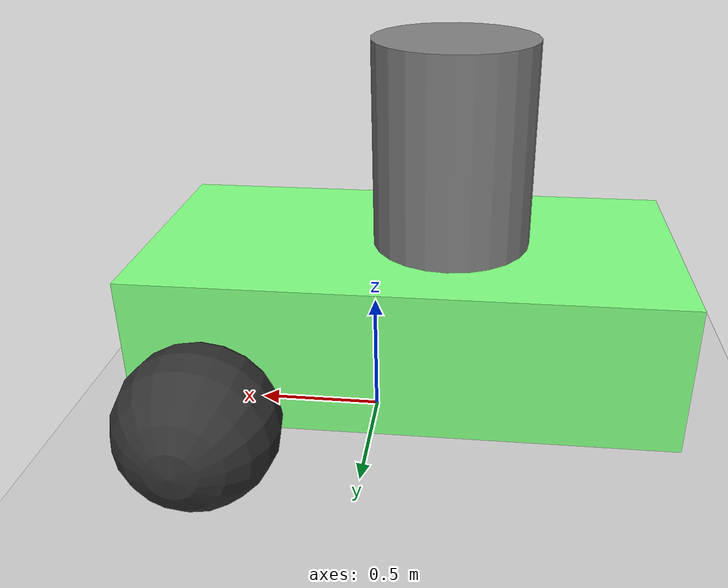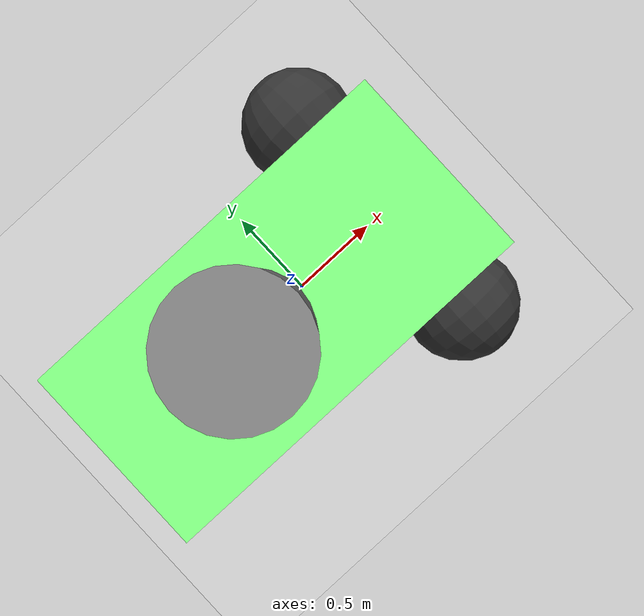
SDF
<?xml version="1.0" ?>

<sdf version="1.6">
  <world name="visualize_contacts">
    <plugin
      filename="gz-sim-physics-system"
      name="gz::sim::systems::Physics">
    </plugin>
    <plugin
      filename="gz-sim-contact-system"
      name="gz::sim::systems::Contact">
    </plugin>
    <plugin
      filename="gz-sim-scene-broadcaster-system"
      name="gz::sim::systems::SceneBroadcaster">
    </plugin>
    <plugin
      filename="gz-sim-user-commands-system"
      name="gz::sim::systems::UserCommands">
    </plugin>

    <gui fullscreen="0">

      <!-- 3D scene -->
      <plugin filename="MinimalScene" name="3D View">
        <gz-gui>
          <title>3D View</title>
          <property type="bool" key="showTitleBar">false</property>
          <property type="string" key="state">docked</property>
        </gz-gui>

        <engine>ogre</engine>
        <scene>scene</scene>
        <ambient_light>0.4 0.4 0.4</ambient_light>
        <background_color>0.8 0.8 0.8</background_color>
        <camera_pose>-6 0 6 0 0.5 0</camera_pose>
      </plugin>

      <!-- Plugins that add functionality to the scene -->
      <plugin filename="EntityContextMenuPlugin" name="Entity context menu">
        <gz-gui>
          <property key="state" type="string">floating</property>
          <property key="width" type="double">5</property>
          <property key="height" type="double">5</property>
          <property key="showTitleBar" type="bool">false</property>
        </gz-gui>
      </plugin>
      <plugin filename="GzSceneManager" name="Scene Manager">
        <gz-gui>
          <property key="resizable" type="bool">false</property>
          <property key="width" type="double">5</property>
          <property key="height" type="double">5</property>
          <property key="state" type="string">floating</property>
          <property key="showTitleBar" type="bool">false</property>
        </gz-gui>
      </plugin>
      <plugin filename="InteractiveViewControl" name="Interactive view control">
        <gz-gui>
          <property key="resizable" type="bool">false</property>
          <property key="width" type="double">5</property>
          <property key="height" type="double">5</property>
          <property key="state" type="string">floating</property>
          <property key="showTitleBar" type="bool">false</property>
        </gz-gui>
      </plugin>
      <plugin filename="CameraTracking" name="Camera Tracking">
        <gz-gui>
          <property key="resizable" type="bool">false</property>
          <property key="width" type="double">5</property>
          <property key="height" type="double">5</property>
          <property key="state" type="string">floating</property>
          <property key="showTitleBar" type="bool">false</property>
        </gz-gui>
      </plugin>
      <!-- World control -->
      <plugin filename="WorldControl" name="World control">
        <gz-gui>
          <title>World control</title>
          <property type="bool" key="showTitleBar">false</property>
          <property type="bool" key="resizable">false</property>
          <property type="double" key="height">72</property>
          <property type="double" key="z">1</property>

          <property type="string" key="state">floating</property>
          <anchors target="3D View">
            <line own="left" target="left"/>
            <line own="bottom" target="bottom"/>
          </anchors>
        </gz-gui>

        <play_pause>true</play_pause>
        <step>true</step>
        <start_paused>true</start_paused>
        <use_event>true</use_event>

      </plugin>

      <!-- World statistics -->
      <plugin filename="WorldStats" name="World stats">
        <gz-gui>
          <title>World stats</title>
          <property type="bool" key="showTitleBar">false</property>
          <property type="bool" key="resizable">false</property>
          <property type="double" key="height">110</property>
          <property type="double" key="width">290</property>
          <property type="double" key="z">1</property>

          <property type="string" key="state">floating</property>
          <anchors target="3D View">
            <line own="right" target="right"/>
            <line own="bottom" target="bottom"/>
          </anchors>
        </gz-gui>

        <sim_time>true</sim_time>
        <real_time>true</real_time>
        <real_time_factor>true</real_time_factor>
        <iterations>true</iterations>
      </plugin>

      <plugin filename="MarkerManager" name="Marker manager">
        <gz-gui>
          <property key="resizable" type="bool">false</property>
          <property key="width" type="double">5</property>
          <property key="height" type="double">5</property>
          <property key="state" type="string">floating</property>
          <property key="showTitleBar" type="bool">false</property>
        </gz-gui>
      </plugin>

      <!-- Visualize Contacts -->
      <plugin filename="VisualizeContacts" name="Visualize Contacts">
        <gz-gui>
          <property key="state" type="string">docked</property>
        </gz-gui>
      </plugin>
    </gui>

    <light type="directional" name="sun">
      <cast_shadows>true</cast_shadows>
      <pose>0 0 10 0 0 0</pose>
      <diffuse>1 1 1 1</diffuse>
      <specular>0.5 0.5 0.5 1</specular>
      <attenuation>
        <range>1000</range>
        <constant>0.9</constant>
        <linear>0.01</linear>
        <quadratic>0.001</quadratic>
      </attenuation>
      <direction>-0.5 0.1 -0.9</direction>
    </light>

    <model name="ground_plane">
      <static>true</static>
      <link name="link">
        <collision name="collision">
          <geometry>
            <plane>
              <normal>0 0 1</normal>
            </plane>
          </geometry>
        </collision>
        <visual name="visual">
          <geometry>
            <plane>
              <normal>0 0 1</normal>
              <size>100 100</size>
            </plane>
          </geometry>
          <material>
            <ambient>0.8 0.8 0.8 1</ambient>
            <diffuse>0.8 0.8 0.8 1</diffuse>
            <specular>0.8 0.8 0.8 1</specular>
          </material>
        </visual>
      </link>
    </model>

    <model name="cylinder">
      <pose>-0.3 0 1.15 0 0 0</pose>
      <link name="link">
        <collision name="collision">
          <geometry>
            <cylinder>
              <radius>0.3</radius>
              <length>0.8</length>
            </cylinder>
          </geometry>
        </collision>
        <visual name="visual">
          <geometry>
            <cylinder>
              <radius>0.3</radius>
              <length>0.8</length>
            </cylinder>
          </geometry>
          <material>
            <ambient>0.5 0.5 0.5 1</ambient>
            <diffuse>0.5 0.5 0.5 1</diffuse>
            <specular>0.5 0.5 0.5 1</specular>
          </material>
        </visual>
        <sensor name="contact_sensor" type="contact">
          <contact>
            <collision>collision</collision>
          </contact>
        </sensor>
      </link>
    </model>

    <model name='vehicle'>
      <pose>0 0 0.325 0 0 0</pose>

	<link name="lnkPlantar">
		<pose>-0.151427 -0 0.175 0 -0 0</pose>
		<inertial>
		  <mass>.223</mass>
		  <inertia>  <ixx>0.00010802</ixx> <iyy>0.00019195</iyy>
		    <izz>0.00029973</izz>
		    <ixy>0</ixy>
		    <ixz>0</ixz>
		    <iyz>0</iyz>
		  </inertia>
		</inertial>
		<collision name="collision">
		  <geometry>
		    <box>
		      <size>0.1016 0.0762 0.00254</size> </box>
		  </geometry>
		   <surface>
		    <friction>
		      <ode>
			<mu>0.5</mu>
			<mu2>0.5</mu2>
		      </ode>
		    </friction>
		  </surface>
		</collision>
		<visual name="visual">
		  <geometry>
		    <box>
		      <size>0.1016 0.0762 0.00254</size>
		    </box>
		  </geometry>
		  <material>
			<ambient>0 0 1 1</ambient>
			<diffuse>0 0 1 1</diffuse>
			<specular>0.1 0.1 0.1 1</specular>
		  </material>
		</visual>
        <sensor name="contact_sensorA" type="contact">
          <contact>
            <collision>collision</collision>
          </contact>
        </sensor>
	</link>

      <link name='chassis'>
        <pose>-0.151427 -0 0.175 0 -0 0</pose>
        <inertial>
          <mass>1.14395</mass>
          <inertia>
            <ixx>0.126164</ixx>
            <ixy>0</ixy>
            <ixz>0</ixz>
            <iyy>0.416519</iyy>
            <iyz>0</iyz>
            <izz>0.481014</izz>
          </inertia>
        </inertial>
        <visual name='visual'>
          <geometry>
            <box>
              <size>2.01142 1 0.568726</size>
            </box>
          </geometry>
          <material>
            <ambient>0.5 1.0 0.5 1</ambient>
            <diffuse>0.5 1.0 0.5 1</diffuse>
            <specular>0.5 1.0 0.5 1</specular>
          </material>
        </visual>
        <collision name='collision'>
          <geometry>
            <box>
              <size>2.01142 1 0.568726</size>
            </box>
          </geometry>
        </collision>
      </link>

      <link name='left_wheel'>
        <pose>0.554283 0.625029 -0.025 -1.5707 0 0</pose>
        <inertial>
          <mass>2</mass>
          <inertia>
            <ixx>0.145833</ixx>
            <ixy>0</ixy>
            <ixz>0</ixz>
            <iyy>0.145833</iyy>
            <iyz>0</iyz>
            <izz>0.125</izz>
          </inertia>
        </inertial>
        <visual name='visual'>
          <geometry>
            <sphere>
              <radius>0.3</radius>
            </sphere>
          </geometry>
          <material>
            <ambient>0.2 0.2 0.2 1</ambient>
            <diffuse>0.2 0.2 0.2 1</diffuse>
            <specular>0.2 0.2 0.2 1</specular>
          </material>
        </visual>
        <collision name='collision'>
          <geometry>
            <sphere>
              <radius>0.3</radius>
            </sphere>
          </geometry>
        </collision>
        <sensor name="contact_sensor" type="contact">
          <contact>
            <collision>collision</collision>
          </contact>
        </sensor>
      </link>

      <link name='right_wheel'>
        <pose>0.554282 -0.625029 -0.025 -1.5707 0 0</pose>
        <inertial>
          <mass>2</mass>
          <inertia>
            <ixx>0.145833</ixx>
            <ixy>0</ixy>
            <ixz>0</ixz>
            <iyy>0.145833</iyy>
            <iyz>0</iyz>
            <izz>0.125</izz>
          </inertia>
        </inertial>
        <visual name='visual'>
          <geometry>
            <sphere>
              <radius>0.3</radius>
            </sphere>
          </geometry>
          <material>
            <ambient>0.2 0.2 0.2 1</ambient>
            <diffuse>0.2 0.2 0.2 1</diffuse>
            <specular>0.2 0.2 0.2 1</specular>
          </material>
        </visual>
        <collision name='collision'>
          <geometry>
            <sphere>
              <radius>0.3</radius>
            </sphere>
          </geometry>
        </collision>
      </link>

      <link name='caster'>
        <pose>-0.957138 -0 -0.125 0 -0 0</pose>
        <inertial>
          <mass>1</mass>
          <inertia>
            <ixx>0.1</ixx>
            <ixy>0</ixy>
            <ixz>0</ixz>
            <iyy>0.1</iyy>
            <iyz>0</iyz>
            <izz>0.1</izz>
          </inertia>
        </inertial>
        <visual name='visual'>
          <geometry>
            <sphere>
              <radius>0.2</radius>
            </sphere>
          </geometry>
          <material>
            <ambient>0.2 0.2 0.2 1</ambient>
            <diffuse>0.2 0.2 0.2 1</diffuse>
            <specular>0.2 0.2 0.2 1</specular>
          </material>
        </visual>
        <collision name='collision'>
          <geometry>
            <sphere>
              <radius>0.2</radius>
            </sphere>
          </geometry>
        </collision>
      </link>

      <joint name='left_wheel_joint' type='revolute'>
        <parent>chassis</parent>
        <child>left_wheel</child>
        <axis>
          <xyz>0 0 1</xyz>
          <limit>
            <lower>-1.79769e+308</lower>
            <upper>1.79769e+308</upper>
          </limit>
        </axis>
      </joint>

      <joint name='right_wheel_joint' type='revolute'>
        <parent>chassis</parent>
        <child>right_wheel</child>
        <axis>
          <xyz>0 0 1</xyz>
          <limit>
            <lower>-1.79769e+308</lower>
            <upper>1.79769e+308</upper>
          </limit>
        </axis>
      </joint>

      <joint name='caster_wheel' type='ball'>
        <parent>chassis</parent>
        <child>caster</child>
      </joint>

    </model>

  </world>
</sdf>
